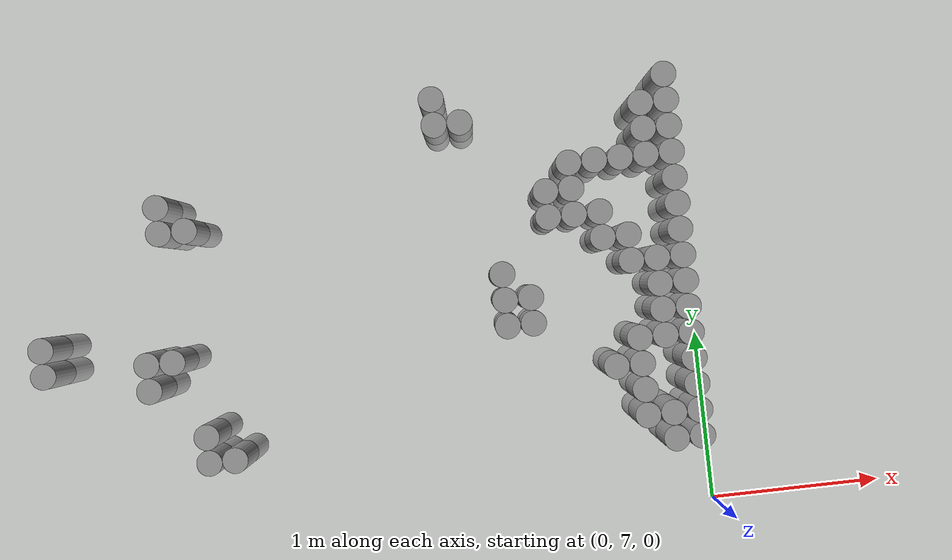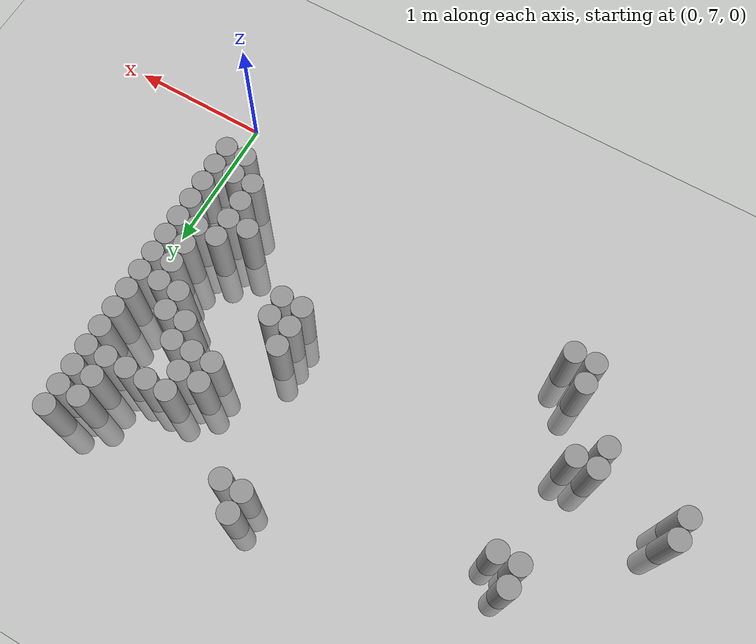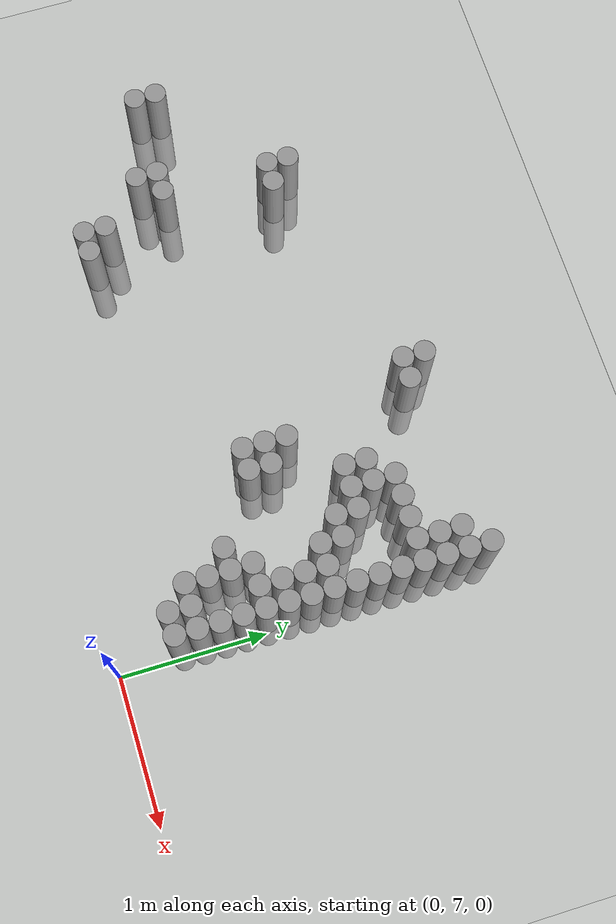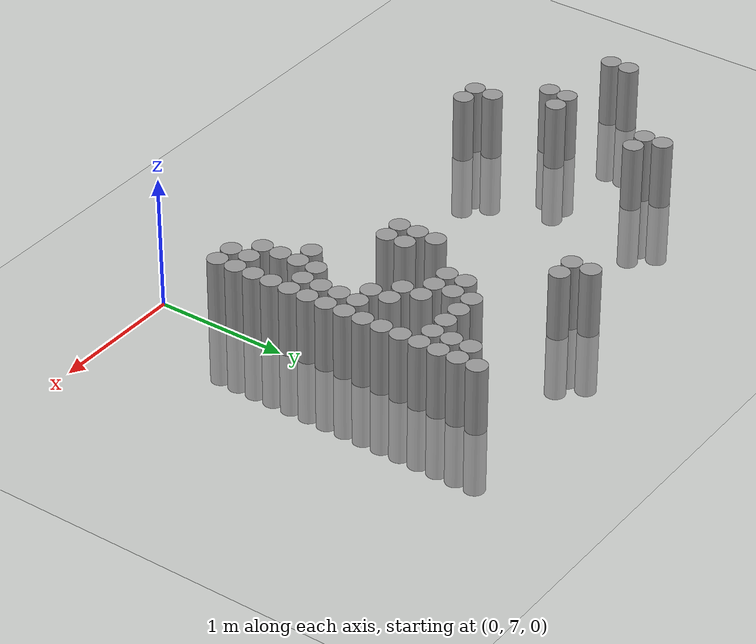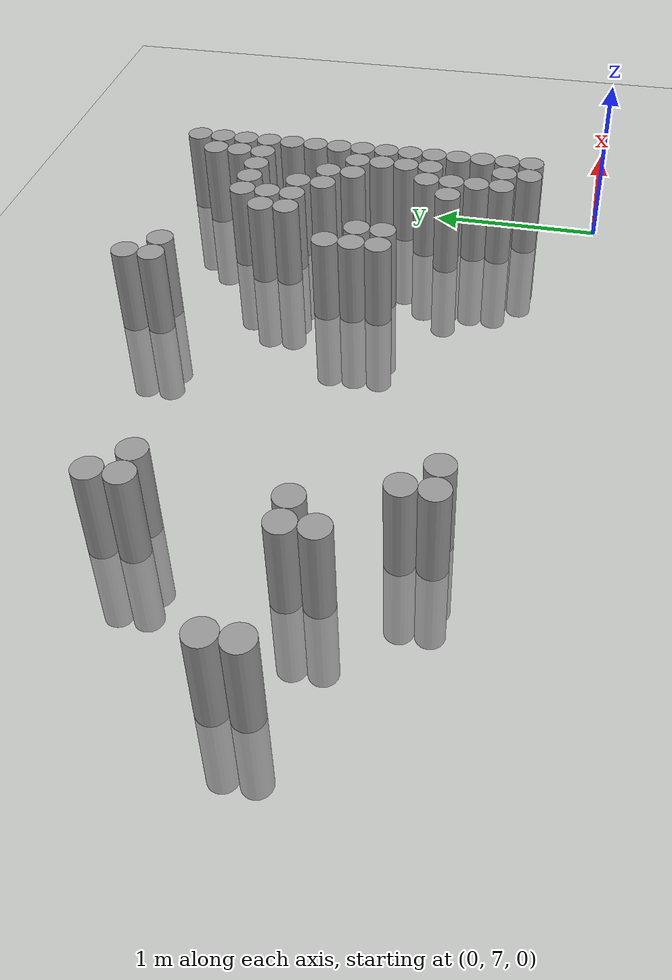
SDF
<sdf version="1.6">
 <world name="default">
  <model name="ground_plane">
   <static>1</static>
   <static>1</static>
   <link name="link">
    <collision name="collision">
     <geometry><plane><normal>0 0 1</normal><size>100 100</size></plane></geometry>
     <surface><friction><ode><mu>100</mu><mu2>50</mu2></ode></friction></surface>
    </collision>
    <visual name="visual">
     <cast_shadows>0</cast_shadows>
     <geometry><plane><normal>0 0 1</normal><size>100 100</size></plane></geometry>
     <material>
      <script><uri>file://media/materials/scripts/gazebo.material</uri><name>Gazebo/Grey</name></script>
     </material>
    </visual>
   </link>
  </model>
  <model name="unit_cylinder_165">
   <static>1</static>
   <pose>-3.825000 8.175000 0.000000 0.000000 0.000000 0.000000</pose>
   <link name="link">
    <inertial>
     <mass>1</mass>
     <inertia><ixx>0.145833</ixx><ixy>0</ixy><ixz>0</ixz><iyy>0.145833</iyy><iyz>0</iyz><izz>0.125</izz></inertia>
    </inertial>
    <collision name="collision">
     <geometry><cylinder><radius>0.075000</radius><length>1</length></cylinder></geometry>
    </collision>
    <visual name="visual">
     <geometry><cylinder><radius>0.075000</radius><length>1</length></cylinder></geometry>
     <material>
      <script><name>Gazebo/Grey</name><uri>file://media/materials/scripts/gazebo.material</uri></script>
     </material>
    </visual>
   </link>
  </model>
  <model name="unit_cylinder_166">
   <static>1</static>
   <pose>-3.825000 8.325000 0.000000 0.000000 0.000000 0.000000</pose>
   <link name="link">
    <inertial>
     <mass>1</mass>
     <inertia><ixx>0.145833</ixx><ixy>0</ixy><ixz>0</ixz><iyy>0.145833</iyy><iyz>0</iyz><izz>0.125</izz></inertia>
    </inertial>
    <collision name="collision">
     <geometry><cylinder><radius>0.075000</radius><length>1</length></cylinder></geometry>
    </collision>
    <visual name="visual">
     <geometry><cylinder><radius>0.075000</radius><length>1</length></cylinder></geometry>
     <material>
      <script><name>Gazebo/Grey</name><uri>file://media/materials/scripts/gazebo.material</uri></script>
     </material>
    </visual>
   </link>
  </model>
  <model name="unit_cylinder_171">
   <static>1</static>
   <pose>-3.225000 8.025000 0.000000 0.000000 0.000000 0.000000</pose>
   <link name="link">
    <inertial>
     <mass>1</mass>
     <inertia><ixx>0.145833</ixx><ixy>0</ixy><ixz>0</ixz><iyy>0.145833</iyy><iyz>0</iyz><izz>0.125</izz></inertia>
    </inertial>
    <collision name="collision">
     <geometry><cylinder><radius>0.075000</radius><length>1</length></cylinder></geometry>
    </collision>
    <visual name="visual">
     <geometry><cylinder><radius>0.075000</radius><length>1</length></cylinder></geometry>
     <material>
      <script><name>Gazebo/Grey</name><uri>file://media/materials/scripts/gazebo.material</uri></script>
     </material>
    </visual>
   </link>
  </model>
  <model name="unit_cylinder_172">
   <static>1</static>
   <pose>-3.225000 8.175000 0.000000 0.000000 0.000000 0.000000</pose>
   <link name="link">
    <inertial>
     <mass>1</mass>
     <inertia><ixx>0.145833</ixx><ixy>0</ixy><ixz>0</ixz><iyy>0.145833</iyy><iyz>0</iyz><izz>0.125</izz></inertia>
    </inertial>
    <collision name="collision">
     <geometry><cylinder><radius>0.075000</radius><length>1</length></cylinder></geometry>
    </collision>
    <visual name="visual">
     <geometry><cylinder><radius>0.075000</radius><length>1</length></cylinder></geometry>
     <material>
      <script><name>Gazebo/Grey</name><uri>file://media/materials/scripts/gazebo.material</uri></script>
     </material>
    </visual>
   </link>
  </model>
  <model name="unit_cylinder_175">
   <static>1</static>
   <pose>-3.075000 8.175000 0.000000 0.000000 0.000000 0.000000</pose>
   <link name="link">
    <inertial>
     <mass>1</mass>
     <inertia><ixx>0.145833</ixx><ixy>0</ixy><ixz>0</ixz><iyy>0.145833</iyy><iyz>0</iyz><izz>0.125</izz></inertia>
    </inertial>
    <collision name="collision">
     <geometry><cylinder><radius>0.075000</radius><length>1</length></cylinder></geometry>
    </collision>
    <visual name="visual">
     <geometry><cylinder><radius>0.075000</radius><length>1</length></cylinder></geometry>
     <material>
      <script><name>Gazebo/Grey</name><uri>file://media/materials/scripts/gazebo.material</uri></script>
     </material>
    </visual>
   </link>
  </model>
  <model name="unit_cylinder_176">
   <static>1</static>
   <pose>-3.075000 8.925000 0.000000 0.000000 0.000000 0.000000</pose>
   <link name="link">
    <inertial>
     <mass>1</mass>
     <inertia><ixx>0.145833</ixx><ixy>0</ixy><ixz>0</ixz><iyy>0.145833</iyy><iyz>0</iyz><izz>0.125</izz></inertia>
    </inertial>
    <collision name="collision">
     <geometry><cylinder><radius>0.075000</radius><length>1</length></cylinder></geometry>
    </collision>
    <visual name="visual">
     <geometry><cylinder><radius>0.075000</radius><length>1</length></cylinder></geometry>
     <material>
      <script><name>Gazebo/Grey</name><uri>file://media/materials/scripts/gazebo.material</uri></script>
     </material>
    </visual>
   </link>
  </model>
  <model name="unit_cylinder_177">
   <static>1</static>
   <pose>-3.075000 9.075000 0.000000 0.000000 0.000000 0.000000</pose>
   <link name="link">
    <inertial>
     <mass>1</mass>
     <inertia><ixx>0.145833</ixx><ixy>0</ixy><ixz>0</ixz><iyy>0.145833</iyy><iyz>0</iyz><izz>0.125</izz></inertia>
    </inertial>
    <collision name="collision">
     <geometry><cylinder><radius>0.075000</radius><length>1</length></cylinder></geometry>
    </collision>
    <visual name="visual">
     <geometry><cylinder><radius>0.075000</radius><length>1</length></cylinder></geometry>
     <material>
      <script><name>Gazebo/Grey</name><uri>file://media/materials/scripts/gazebo.material</uri></script>
     </material>
    </visual>
   </link>
  </model>
  <model name="unit_cylinder_178">
   <static>1</static>
   <pose>-2.925000 7.575000 0.000000 0.000000 0.000000 0.000000</pose>
   <link name="link">
    <inertial>
     <mass>1</mass>
     <inertia><ixx>0.145833</ixx><ixy>0</ixy><ixz>0</ixz><iyy>0.145833</iyy><iyz>0</iyz><izz>0.125</izz></inertia>
    </inertial>
    <collision name="collision">
     <geometry><cylinder><radius>0.075000</radius><length>1</length></cylinder></geometry>
    </collision>
    <visual name="visual">
     <geometry><cylinder><radius>0.075000</radius><length>1</length></cylinder></geometry>
     <material>
      <script><name>Gazebo/Grey</name><uri>file://media/materials/scripts/gazebo.material</uri></script>
     </material>
    </visual>
   </link>
  </model>
  <model name="unit_cylinder_179">
   <static>1</static>
   <pose>-2.925000 7.725000 0.000000 0.000000 0.000000 0.000000</pose>
   <link name="link">
    <inertial>
     <mass>1</mass>
     <inertia><ixx>0.145833</ixx><ixy>0</ixy><ixz>0</ixz><iyy>0.145833</iyy><iyz>0</iyz><izz>0.125</izz></inertia>
    </inertial>
    <collision name="collision">
     <geometry><cylinder><radius>0.075000</radius><length>1</length></cylinder></geometry>
    </collision>
    <visual name="visual">
     <geometry><cylinder><radius>0.075000</radius><length>1</length></cylinder></geometry>
     <material>
      <script><name>Gazebo/Grey</name><uri>file://media/materials/scripts/gazebo.material</uri></script>
     </material>
    </visual>
   </link>
  </model>
  <model name="unit_cylinder_180">
   <static>1</static>
   <pose>-2.925000 8.925000 0.000000 0.000000 0.000000 0.000000</pose>
   <link name="link">
    <inertial>
     <mass>1</mass>
     <inertia><ixx>0.145833</ixx><ixy>0</ixy><ixz>0</ixz><iyy>0.145833</iyy><iyz>0</iyz><izz>0.125</izz></inertia>
    </inertial>
    <collision name="collision">
     <geometry><cylinder><radius>0.075000</radius><length>1</length></cylinder></geometry>
    </collision>
    <visual name="visual">
     <geometry><cylinder><radius>0.075000</radius><length>1</length></cylinder></geometry>
     <material>
      <script><name>Gazebo/Grey</name><uri>file://media/materials/scripts/gazebo.material</uri></script>
     </material>
    </visual>
   </link>
  </model>
  <model name="unit_cylinder_183">
   <static>1</static>
   <pose>-2.775000 7.575000 0.000000 0.000000 0.000000 0.000000</pose>
   <link name="link">
    <inertial>
     <mass>1</mass>
     <inertia><ixx>0.145833</ixx><ixy>0</ixy><ixz>0</ixz><iyy>0.145833</iyy><iyz>0</iyz><izz>0.125</izz></inertia>
    </inertial>
    <collision name="collision">
     <geometry><cylinder><radius>0.075000</radius><length>1</length></cylinder></geometry>
    </collision>
    <visual name="visual">
     <geometry><cylinder><radius>0.075000</radius><length>1</length></cylinder></geometry>
     <material>
      <script><name>Gazebo/Grey</name><uri>file://media/materials/scripts/gazebo.material</uri></script>
     </material>
    </visual>
   </link>
  </model>
  <model name="unit_cylinder_216">
   <static>1</static>
   <pose>-1.425000 9.375000 0.000000 0.000000 0.000000 0.000000</pose>
   <link name="link">
    <inertial>
     <mass>1</mass>
     <inertia><ixx>0.145833</ixx><ixy>0</ixy><ixz>0</ixz><iyy>0.145833</iyy><iyz>0</iyz><izz>0.125</izz></inertia>
    </inertial>
    <collision name="collision">
     <geometry><cylinder><radius>0.075000</radius><length>1</length></cylinder></geometry>
    </collision>
    <visual name="visual">
     <geometry><cylinder><radius>0.075000</radius><length>1</length></cylinder></geometry>
     <material>
      <script><name>Gazebo/Grey</name><uri>file://media/materials/scripts/gazebo.material</uri></script>
     </material>
    </visual>
   </link>
  </model>
  <model name="unit_cylinder_217">
   <static>1</static>
   <pose>-1.425000 9.525000 0.000000 0.000000 0.000000 0.000000</pose>
   <link name="link">
    <inertial>
     <mass>1</mass>
     <inertia><ixx>0.145833</ixx><ixy>0</ixy><ixz>0</ixz><iyy>0.145833</iyy><iyz>0</iyz><izz>0.125</izz></inertia>
    </inertial>
    <collision name="collision">
     <geometry><cylinder><radius>0.075000</radius><length>1</length></cylinder></geometry>
    </collision>
    <visual name="visual">
     <geometry><cylinder><radius>0.075000</radius><length>1</length></cylinder></geometry>
     <material>
      <script><name>Gazebo/Grey</name><uri>file://media/materials/scripts/gazebo.material</uri></script>
     </material>
    </visual>
   </link>
  </model>
  <model name="unit_cylinder_218">
   <static>1</static>
   <pose>-1.275000 9.375000 0.000000 0.000000 0.000000 0.000000</pose>
   <link name="link">
    <inertial>
     <mass>1</mass>
     <inertia><ixx>0.145833</ixx><ixy>0</ixy><ixz>0</ixz><iyy>0.145833</iyy><iyz>0</iyz><izz>0.125</izz></inertia>
    </inertial>
    <collision name="collision">
     <geometry><cylinder><radius>0.075000</radius><length>1</length></cylinder></geometry>
    </collision>
    <visual name="visual">
     <geometry><cylinder><radius>0.075000</radius><length>1</length></cylinder></geometry>
     <material>
      <script><name>Gazebo/Grey</name><uri>file://media/materials/scripts/gazebo.material</uri></script>
     </material>
    </visual>
   </link>
  </model>
  <model name="unit_cylinder_219">
   <static>1</static>
   <pose>-1.125000 8.175000 0.000000 0.000000 0.000000 0.000000</pose>
   <link name="link">
    <inertial>
     <mass>1</mass>
     <inertia><ixx>0.145833</ixx><ixy>0</ixy><ixz>0</ixz><iyy>0.145833</iyy><iyz>0</iyz><izz>0.125</izz></inertia>
    </inertial>
    <collision name="collision">
     <geometry><cylinder><radius>0.075000</radius><length>1</length></cylinder></geometry>
    </collision>
    <visual name="visual">
     <geometry><cylinder><radius>0.075000</radius><length>1</length></cylinder></geometry>
     <material>
      <script><name>Gazebo/Grey</name><uri>file://media/materials/scripts/gazebo.material</uri></script>
     </material>
    </visual>
   </link>
  </model>
  <model name="unit_cylinder_220">
   <static>1</static>
   <pose>-1.125000 8.325000 0.000000 0.000000 0.000000 0.000000</pose>
   <link name="link">
    <inertial>
     <mass>1</mass>
     <inertia><ixx>0.145833</ixx><ixy>0</ixy><ixz>0</ixz><iyy>0.145833</iyy><iyz>0</iyz><izz>0.125</izz></inertia>
    </inertial>
    <collision name="collision">
     <geometry><cylinder><radius>0.075000</radius><length>1</length></cylinder></geometry>
    </collision>
    <visual name="visual">
     <geometry><cylinder><radius>0.075000</radius><length>1</length></cylinder></geometry>
     <material>
      <script><name>Gazebo/Grey</name><uri>file://media/materials/scripts/gazebo.material</uri></script>
     </material>
    </visual>
   </link>
  </model>
  <model name="unit_cylinder_221">
   <static>1</static>
   <pose>-1.125000 8.475000 0.000000 0.000000 0.000000 0.000000</pose>
   <link name="link">
    <inertial>
     <mass>1</mass>
     <inertia><ixx>0.145833</ixx><ixy>0</ixy><ixz>0</ixz><iyy>0.145833</iyy><iyz>0</iyz><izz>0.125</izz></inertia>
    </inertial>
    <collision name="collision">
     <geometry><cylinder><radius>0.075000</radius><length>1</length></cylinder></geometry>
    </collision>
    <visual name="visual">
     <geometry><cylinder><radius>0.075000</radius><length>1</length></cylinder></geometry>
     <material>
      <script><name>Gazebo/Grey</name><uri>file://media/materials/scripts/gazebo.material</uri></script>
     </material>
    </visual>
   </link>
  </model>
  <model name="unit_cylinder_222">
   <static>1</static>
   <pose>-0.975000 8.175000 0.000000 0.000000 0.000000 0.000000</pose>
   <link name="link">
    <inertial>
     <mass>1</mass>
     <inertia><ixx>0.145833</ixx><ixy>0</ixy><ixz>0</ixz><iyy>0.145833</iyy><iyz>0</iyz><izz>0.125</izz></inertia>
    </inertial>
    <collision name="collision">
     <geometry><cylinder><radius>0.075000</radius><length>1</length></cylinder></geometry>
    </collision>
    <visual name="visual">
     <geometry><cylinder><radius>0.075000</radius><length>1</length></cylinder></geometry>
     <material>
      <script><name>Gazebo/Grey</name><uri>file://media/materials/scripts/gazebo.material</uri></script>
     </material>
    </visual>
   </link>
  </model>
  <model name="unit_cylinder_223">
   <static>1</static>
   <pose>-0.975000 8.325000 0.000000 0.000000 0.000000 0.000000</pose>
   <link name="link">
    <inertial>
     <mass>1</mass>
     <inertia><ixx>0.145833</ixx><ixy>0</ixy><ixz>0</ixz><iyy>0.145833</iyy><iyz>0</iyz><izz>0.125</izz></inertia>
    </inertial>
    <collision name="collision">
     <geometry><cylinder><radius>0.075000</radius><length>1</length></cylinder></geometry>
    </collision>
    <visual name="visual">
     <geometry><cylinder><radius>0.075000</radius><length>1</length></cylinder></geometry>
     <material>
      <script><name>Gazebo/Grey</name><uri>file://media/materials/scripts/gazebo.material</uri></script>
     </material>
    </visual>
   </link>
  </model>
  <model name="unit_cylinder_224">
   <static>1</static>
   <pose>-0.825000 8.775000 0.000000 0.000000 0.000000 0.000000</pose>
   <link name="link">
    <inertial>
     <mass>1</mass>
     <inertia><ixx>0.145833</ixx><ixy>0</ixy><ixz>0</ixz><iyy>0.145833</iyy><iyz>0</iyz><izz>0.125</izz></inertia>
    </inertial>
    <collision name="collision">
     <geometry><cylinder><radius>0.075000</radius><length>1</length></cylinder></geometry>
    </collision>
    <visual name="visual">
     <geometry><cylinder><radius>0.075000</radius><length>1</length></cylinder></geometry>
     <material>
      <script><name>Gazebo/Grey</name><uri>file://media/materials/scripts/gazebo.material</uri></script>
     </material>
    </visual>
   </link>
  </model>
  <model name="unit_cylinder_225">
   <static>1</static>
   <pose>-0.825000 8.925000 0.000000 0.000000 0.000000 0.000000</pose>
   <link name="link">
    <inertial>
     <mass>1</mass>
     <inertia><ixx>0.145833</ixx><ixy>0</ixy><ixz>0</ixz><iyy>0.145833</iyy><iyz>0</iyz><izz>0.125</izz></inertia>
    </inertial>
    <collision name="collision">
     <geometry><cylinder><radius>0.075000</radius><length>1</length></cylinder></geometry>
    </collision>
    <visual name="visual">
     <geometry><cylinder><radius>0.075000</radius><length>1</length></cylinder></geometry>
     <material>
      <script><name>Gazebo/Grey</name><uri>file://media/materials/scripts/gazebo.material</uri></script>
     </material>
    </visual>
   </link>
  </model>
  <model name="unit_cylinder_229">
   <static>1</static>
   <pose>-0.675000 8.775000 0.000000 0.000000 0.000000 0.000000</pose>
   <link name="link">
    <inertial>
     <mass>1</mass>
     <inertia><ixx>0.145833</ixx><ixy>0</ixy><ixz>0</ixz><iyy>0.145833</iyy><iyz>0</iyz><izz>0.125</izz></inertia>
    </inertial>
    <collision name="collision">
     <geometry><cylinder><radius>0.075000</radius><length>1</length></cylinder></geometry>
    </collision>
    <visual name="visual">
     <geometry><cylinder><radius>0.075000</radius><length>1</length></cylinder></geometry>
     <material>
      <script><name>Gazebo/Grey</name><uri>file://media/materials/scripts/gazebo.material</uri></script>
     </material>
    </visual>
   </link>
  </model>
  <model name="unit_cylinder_230">
   <static>1</static>
   <pose>-0.675000 8.925000 0.000000 0.000000 0.000000 0.000000</pose>
   <link name="link">
    <inertial>
     <mass>1</mass>
     <inertia><ixx>0.145833</ixx><ixy>0</ixy><ixz>0</ixz><iyy>0.145833</iyy><iyz>0</iyz><izz>0.125</izz></inertia>
    </inertial>
    <collision name="collision">
     <geometry><cylinder><radius>0.075000</radius><length>1</length></cylinder></geometry>
    </collision>
    <visual name="visual">
     <geometry><cylinder><radius>0.075000</radius><length>1</length></cylinder></geometry>
     <material>
      <script><name>Gazebo/Grey</name><uri>file://media/materials/scripts/gazebo.material</uri></script>
     </material>
    </visual>
   </link>
  </model>
  <model name="unit_cylinder_231">
   <static>1</static>
   <pose>-0.675000 9.075000 0.000000 0.000000 0.000000 0.000000</pose>
   <link name="link">
    <inertial>
     <mass>1</mass>
     <inertia><ixx>0.145833</ixx><ixy>0</ixy><ixz>0</ixz><iyy>0.145833</iyy><iyz>0</iyz><izz>0.125</izz></inertia>
    </inertial>
    <collision name="collision">
     <geometry><cylinder><radius>0.075000</radius><length>1</length></cylinder></geometry>
    </collision>
    <visual name="visual">
     <geometry><cylinder><radius>0.075000</radius><length>1</length></cylinder></geometry>
     <material>
      <script><name>Gazebo/Grey</name><uri>file://media/materials/scripts/gazebo.material</uri></script>
     </material>
    </visual>
   </link>
  </model>
  <model name="unit_cylinder_235">
   <static>1</static>
   <pose>-0.525000 7.875000 0.000000 0.000000 0.000000 0.000000</pose>
   <link name="link">
    <inertial>
     <mass>1</mass>
     <inertia><ixx>0.145833</ixx><ixy>0</ixy><ixz>0</ixz><iyy>0.145833</iyy><iyz>0</iyz><izz>0.125</izz></inertia>
    </inertial>
    <collision name="collision">
     <geometry><cylinder><radius>0.075000</radius><length>1</length></cylinder></geometry>
    </collision>
    <visual name="visual">
     <geometry><cylinder><radius>0.075000</radius><length>1</length></cylinder></geometry>
     <material>
      <script><name>Gazebo/Grey</name><uri>file://media/materials/scripts/gazebo.material</uri></script>
     </material>
    </visual>
   </link>
  </model>
  <model name="unit_cylinder_236">
   <static>1</static>
   <pose>-0.525000 8.625000 0.000000 0.000000 0.000000 0.000000</pose>
   <link name="link">
    <inertial>
     <mass>1</mass>
     <inertia><ixx>0.145833</ixx><ixy>0</ixy><ixz>0</ixz><iyy>0.145833</iyy><iyz>0</iyz><izz>0.125</izz></inertia>
    </inertial>
    <collision name="collision">
     <geometry><cylinder><radius>0.075000</radius><length>1</length></cylinder></geometry>
    </collision>
    <visual name="visual">
     <geometry><cylinder><radius>0.075000</radius><length>1</length></cylinder></geometry>
     <material>
      <script><name>Gazebo/Grey</name><uri>file://media/materials/scripts/gazebo.material</uri></script>
     </material>
    </visual>
   </link>
  </model>
  <model name="unit_cylinder_237">
   <static>1</static>
   <pose>-0.525000 8.775000 0.000000 0.000000 0.000000 0.000000</pose>
   <link name="link">
    <inertial>
     <mass>1</mass>
     <inertia><ixx>0.145833</ixx><ixy>0</ixy><ixz>0</ixz><iyy>0.145833</iyy><iyz>0</iyz><izz>0.125</izz></inertia>
    </inertial>
    <collision name="collision">
     <geometry><cylinder><radius>0.075000</radius><length>1</length></cylinder></geometry>
    </collision>
    <visual name="visual">
     <geometry><cylinder><radius>0.075000</radius><length>1</length></cylinder></geometry>
     <material>
      <script><name>Gazebo/Grey</name><uri>file://media/materials/scripts/gazebo.material</uri></script>
     </material>
    </visual>
   </link>
  </model>
  <model name="unit_cylinder_238">
   <static>1</static>
   <pose>-0.525000 9.075000 0.000000 0.000000 0.000000 0.000000</pose>
   <link name="link">
    <inertial>
     <mass>1</mass>
     <inertia><ixx>0.145833</ixx><ixy>0</ixy><ixz>0</ixz><iyy>0.145833</iyy><iyz>0</iyz><izz>0.125</izz></inertia>
    </inertial>
    <collision name="collision">
     <geometry><cylinder><radius>0.075000</radius><length>1</length></cylinder></geometry>
    </collision>
    <visual name="visual">
     <geometry><cylinder><radius>0.075000</radius><length>1</length></cylinder></geometry>
     <material>
      <script><name>Gazebo/Grey</name><uri>file://media/materials/scripts/gazebo.material</uri></script>
     </material>
    </visual>
   </link>
  </model>
  <model name="unit_cylinder_242">
   <static>1</static>
   <pose>-0.375000 7.575000 0.000000 0.000000 0.000000 0.000000</pose>
   <link name="link">
    <inertial>
     <mass>1</mass>
     <inertia><ixx>0.145833</ixx><ixy>0</ixy><ixz>0</ixz><iyy>0.145833</iyy><iyz>0</iyz><izz>0.125</izz></inertia>
    </inertial>
    <collision name="collision">
     <geometry><cylinder><radius>0.075000</radius><length>1</length></cylinder></geometry>
    </collision>
    <visual name="visual">
     <geometry><cylinder><radius>0.075000</radius><length>1</length></cylinder></geometry>
     <material>
      <script><name>Gazebo/Grey</name><uri>file://media/materials/scripts/gazebo.material</uri></script>
     </material>
    </visual>
   </link>
  </model>
  <model name="unit_cylinder_243">
   <static>1</static>
   <pose>-0.375000 7.725000 0.000000 0.000000 0.000000 0.000000</pose>
   <link name="link">
    <inertial>
     <mass>1</mass>
     <inertia><ixx>0.145833</ixx><ixy>0</ixy><ixz>0</ixz><iyy>0.145833</iyy><iyz>0</iyz><izz>0.125</izz></inertia>
    </inertial>
    <collision name="collision">
     <geometry><cylinder><radius>0.075000</radius><length>1</length></cylinder></geometry>
    </collision>
    <visual name="visual">
     <geometry><cylinder><radius>0.075000</radius><length>1</length></cylinder></geometry>
     <material>
      <script><name>Gazebo/Grey</name><uri>file://media/materials/scripts/gazebo.material</uri></script>
     </material>
    </visual>
   </link>
  </model>
  <model name="unit_cylinder_244">
   <static>1</static>
   <pose>-0.375000 7.875000 0.000000 0.000000 0.000000 0.000000</pose>
   <link name="link">
    <inertial>
     <mass>1</mass>
     <inertia><ixx>0.145833</ixx><ixy>0</ixy><ixz>0</ixz><iyy>0.145833</iyy><iyz>0</iyz><izz>0.125</izz></inertia>
    </inertial>
    <collision name="collision">
     <geometry><cylinder><radius>0.075000</radius><length>1</length></cylinder></geometry>
    </collision>
    <visual name="visual">
     <geometry><cylinder><radius>0.075000</radius><length>1</length></cylinder></geometry>
     <material>
      <script><name>Gazebo/Grey</name><uri>file://media/materials/scripts/gazebo.material</uri></script>
     </material>
    </visual>
   </link>
  </model>
  <model name="unit_cylinder_245">
   <static>1</static>
   <pose>-0.375000 8.025000 0.000000 0.000000 0.000000 0.000000</pose>
   <link name="link">
    <inertial>
     <mass>1</mass>
     <inertia><ixx>0.145833</ixx><ixy>0</ixy><ixz>0</ixz><iyy>0.145833</iyy><iyz>0</iyz><izz>0.125</izz></inertia>
    </inertial>
    <collision name="collision">
     <geometry><cylinder><radius>0.075000</radius><length>1</length></cylinder></geometry>
    </collision>
    <visual name="visual">
     <geometry><cylinder><radius>0.075000</radius><length>1</length></cylinder></geometry>
     <material>
      <script><name>Gazebo/Grey</name><uri>file://media/materials/scripts/gazebo.material</uri></script>
     </material>
    </visual>
   </link>
  </model>
  <model name="unit_cylinder_246">
   <static>1</static>
   <pose>-0.375000 8.475000 0.000000 0.000000 0.000000 0.000000</pose>
   <link name="link">
    <inertial>
     <mass>1</mass>
     <inertia><ixx>0.145833</ixx><ixy>0</ixy><ixz>0</ixz><iyy>0.145833</iyy><iyz>0</iyz><izz>0.125</izz></inertia>
    </inertial>
    <collision name="collision">
     <geometry><cylinder><radius>0.075000</radius><length>1</length></cylinder></geometry>
    </collision>
    <visual name="visual">
     <geometry><cylinder><radius>0.075000</radius><length>1</length></cylinder></geometry>
     <material>
      <script><name>Gazebo/Grey</name><uri>file://media/materials/scripts/gazebo.material</uri></script>
     </material>
    </visual>
   </link>
  </model>
  <model name="unit_cylinder_247">
   <static>1</static>
   <pose>-0.375000 8.625000 0.000000 0.000000 0.000000 0.000000</pose>
   <link name="link">
    <inertial>
     <mass>1</mass>
     <inertia><ixx>0.145833</ixx><ixy>0</ixy><ixz>0</ixz><iyy>0.145833</iyy><iyz>0</iyz><izz>0.125</izz></inertia>
    </inertial>
    <collision name="collision">
     <geometry><cylinder><radius>0.075000</radius><length>1</length></cylinder></geometry>
    </collision>
    <visual name="visual">
     <geometry><cylinder><radius>0.075000</radius><length>1</length></cylinder></geometry>
     <material>
      <script><name>Gazebo/Grey</name><uri>file://media/materials/scripts/gazebo.material</uri></script>
     </material>
    </visual>
   </link>
  </model>
  <model name="unit_cylinder_248">
   <static>1</static>
   <pose>-0.375000 9.075000 0.000000 0.000000 0.000000 0.000000</pose>
   <link name="link">
    <inertial>
     <mass>1</mass>
     <inertia><ixx>0.145833</ixx><ixy>0</ixy><ixz>0</ixz><iyy>0.145833</iyy><iyz>0</iyz><izz>0.125</izz></inertia>
    </inertial>
    <collision name="collision">
     <geometry><cylinder><radius>0.075000</radius><length>1</length></cylinder></geometry>
    </collision>
    <visual name="visual">
     <geometry><cylinder><radius>0.075000</radius><length>1</length></cylinder></geometry>
     <material>
      <script><name>Gazebo/Grey</name><uri>file://media/materials/scripts/gazebo.material</uri></script>
     </material>
    </visual>
   </link>
  </model>
  <model name="unit_cylinder_253">
   <static>1</static>
   <pose>-0.225000 7.425000 0.000000 0.000000 0.000000 0.000000</pose>
   <link name="link">
    <inertial>
     <mass>1</mass>
     <inertia><ixx>0.145833</ixx><ixy>0</ixy><ixz>0</ixz><iyy>0.145833</iyy><iyz>0</iyz><izz>0.125</izz></inertia>
    </inertial>
    <collision name="collision">
     <geometry><cylinder><radius>0.075000</radius><length>1</length></cylinder></geometry>
    </collision>
    <visual name="visual">
     <geometry><cylinder><radius>0.075000</radius><length>1</length></cylinder></geometry>
     <material>
      <script><name>Gazebo/Grey</name><uri>file://media/materials/scripts/gazebo.material</uri></script>
     </material>
    </visual>
   </link>
  </model>
  <model name="unit_cylinder_254">
   <static>1</static>
   <pose>-0.225000 7.575000 0.000000 0.000000 0.000000 0.000000</pose>
   <link name="link">
    <inertial>
     <mass>1</mass>
     <inertia><ixx>0.145833</ixx><ixy>0</ixy><ixz>0</ixz><iyy>0.145833</iyy><iyz>0</iyz><izz>0.125</izz></inertia>
    </inertial>
    <collision name="collision">
     <geometry><cylinder><radius>0.075000</radius><length>1</length></cylinder></geometry>
    </collision>
    <visual name="visual">
     <geometry><cylinder><radius>0.075000</radius><length>1</length></cylinder></geometry>
     <material>
      <script><name>Gazebo/Grey</name><uri>file://media/materials/scripts/gazebo.material</uri></script>
     </material>
    </visual>
   </link>
  </model>
  <model name="unit_cylinder_255">
   <static>1</static>
   <pose>-0.225000 8.025000 0.000000 0.000000 0.000000 0.000000</pose>
   <link name="link">
    <inertial>
     <mass>1</mass>
     <inertia><ixx>0.145833</ixx><ixy>0</ixy><ixz>0</ixz><iyy>0.145833</iyy><iyz>0</iyz><izz>0.125</izz></inertia>
    </inertial>
    <collision name="collision">
     <geometry><cylinder><radius>0.075000</radius><length>1</length></cylinder></geometry>
    </collision>
    <visual name="visual">
     <geometry><cylinder><radius>0.075000</radius><length>1</length></cylinder></geometry>
     <material>
      <script><name>Gazebo/Grey</name><uri>file://media/materials/scripts/gazebo.material</uri></script>
     </material>
    </visual>
   </link>
  </model>
  <model name="unit_cylinder_256">
   <static>1</static>
   <pose>-0.225000 8.175000 0.000000 0.000000 0.000000 0.000000</pose>
   <link name="link">
    <inertial>
     <mass>1</mass>
     <inertia><ixx>0.145833</ixx><ixy>0</ixy><ixz>0</ixz><iyy>0.145833</iyy><iyz>0</iyz><izz>0.125</izz></inertia>
    </inertial>
    <collision name="collision">
     <geometry><cylinder><radius>0.075000</radius><length>1</length></cylinder></geometry>
    </collision>
    <visual name="visual">
     <geometry><cylinder><radius>0.075000</radius><length>1</length></cylinder></geometry>
     <material>
      <script><name>Gazebo/Grey</name><uri>file://media/materials/scripts/gazebo.material</uri></script>
     </material>
    </visual>
   </link>
  </model>
  <model name="unit_cylinder_257">
   <static>1</static>
   <pose>-0.225000 8.325000 0.000000 0.000000 0.000000 0.000000</pose>
   <link name="link">
    <inertial>
     <mass>1</mass>
     <inertia><ixx>0.145833</ixx><ixy>0</ixy><ixz>0</ixz><iyy>0.145833</iyy><iyz>0</iyz><izz>0.125</izz></inertia>
    </inertial>
    <collision name="collision">
     <geometry><cylinder><radius>0.075000</radius><length>1</length></cylinder></geometry>
    </collision>
    <visual name="visual">
     <geometry><cylinder><radius>0.075000</radius><length>1</length></cylinder></geometry>
     <material>
      <script><name>Gazebo/Grey</name><uri>file://media/materials/scripts/gazebo.material</uri></script>
     </material>
    </visual>
   </link>
  </model>
  <model name="unit_cylinder_258">
   <static>1</static>
   <pose>-0.225000 8.475000 0.000000 0.000000 0.000000 0.000000</pose>
   <link name="link">
    <inertial>
     <mass>1</mass>
     <inertia><ixx>0.145833</ixx><ixy>0</ixy><ixz>0</ixz><iyy>0.145833</iyy><iyz>0</iyz><izz>0.125</izz></inertia>
    </inertial>
    <collision name="collision">
     <geometry><cylinder><radius>0.075000</radius><length>1</length></cylinder></geometry>
    </collision>
    <visual name="visual">
     <geometry><cylinder><radius>0.075000</radius><length>1</length></cylinder></geometry>
     <material>
      <script><name>Gazebo/Grey</name><uri>file://media/materials/scripts/gazebo.material</uri></script>
     </material>
    </visual>
   </link>
  </model>
  <model name="unit_cylinder_259">
   <static>1</static>
   <pose>-0.225000 9.075000 0.000000 0.000000 0.000000 0.000000</pose>
   <link name="link">
    <inertial>
     <mass>1</mass>
     <inertia><ixx>0.145833</ixx><ixy>0</ixy><ixz>0</ixz><iyy>0.145833</iyy><iyz>0</iyz><izz>0.125</izz></inertia>
    </inertial>
    <collision name="collision">
     <geometry><cylinder><radius>0.075000</radius><length>1</length></cylinder></geometry>
    </collision>
    <visual name="visual">
     <geometry><cylinder><radius>0.075000</radius><length>1</length></cylinder></geometry>
     <material>
      <script><name>Gazebo/Grey</name><uri>file://media/materials/scripts/gazebo.material</uri></script>
     </material>
    </visual>
   </link>
  </model>
  <model name="unit_cylinder_260">
   <static>1</static>
   <pose>-0.225000 9.225000 0.000000 0.000000 0.000000 0.000000</pose>
   <link name="link">
    <inertial>
     <mass>1</mass>
     <inertia><ixx>0.145833</ixx><ixy>0</ixy><ixz>0</ixz><iyy>0.145833</iyy><iyz>0</iyz><izz>0.125</izz></inertia>
    </inertial>
    <collision name="collision">
     <geometry><cylinder><radius>0.075000</radius><length>1</length></cylinder></geometry>
    </collision>
    <visual name="visual">
     <geometry><cylinder><radius>0.075000</radius><length>1</length></cylinder></geometry>
     <material>
      <script><name>Gazebo/Grey</name><uri>file://media/materials/scripts/gazebo.material</uri></script>
     </material>
    </visual>
   </link>
  </model>
  <model name="unit_cylinder_261">
   <static>1</static>
   <pose>-0.225000 9.375000 0.000000 0.000000 0.000000 0.000000</pose>
   <link name="link">
    <inertial>
     <mass>1</mass>
     <inertia><ixx>0.145833</ixx><ixy>0</ixy><ixz>0</ixz><iyy>0.145833</iyy><iyz>0</iyz><izz>0.125</izz></inertia>
    </inertial>
    <collision name="collision">
     <geometry><cylinder><radius>0.075000</radius><length>1</length></cylinder></geometry>
    </collision>
    <visual name="visual">
     <geometry><cylinder><radius>0.075000</radius><length>1</length></cylinder></geometry>
     <material>
      <script><name>Gazebo/Grey</name><uri>file://media/materials/scripts/gazebo.material</uri></script>
     </material>
    </visual>
   </link>
  </model>
  <model name="unit_cylinder_277">
   <static>1</static>
   <pose>-0.075000 7.425000 0.000000 0.000000 0.000000 0.000000</pose>
   <link name="link">
    <inertial>
     <mass>1</mass>
     <inertia><ixx>0.145833</ixx><ixy>0</ixy><ixz>0</ixz><iyy>0.145833</iyy><iyz>0</iyz><izz>0.125</izz></inertia>
    </inertial>
    <collision name="collision">
     <geometry><cylinder><radius>0.075000</radius><length>1</length></cylinder></geometry>
    </collision>
    <visual name="visual">
     <geometry><cylinder><radius>0.075000</radius><length>1</length></cylinder></geometry>
     <material>
      <script><name>Gazebo/Grey</name><uri>file://media/materials/scripts/gazebo.material</uri></script>
     </material>
    </visual>
   </link>
  </model>
  <model name="unit_cylinder_278">
   <static>1</static>
   <pose>-0.075000 7.575000 0.000000 0.000000 0.000000 0.000000</pose>
   <link name="link">
    <inertial>
     <mass>1</mass>
     <inertia><ixx>0.145833</ixx><ixy>0</ixy><ixz>0</ixz><iyy>0.145833</iyy><iyz>0</iyz><izz>0.125</izz></inertia>
    </inertial>
    <collision name="collision">
     <geometry><cylinder><radius>0.075000</radius><length>1</length></cylinder></geometry>
    </collision>
    <visual name="visual">
     <geometry><cylinder><radius>0.075000</radius><length>1</length></cylinder></geometry>
     <material>
      <script><name>Gazebo/Grey</name><uri>file://media/materials/scripts/gazebo.material</uri></script>
     </material>
    </visual>
   </link>
  </model>
  <model name="unit_cylinder_279">
   <static>1</static>
   <pose>-0.075000 7.725000 0.000000 0.000000 0.000000 0.000000</pose>
   <link name="link">
    <inertial>
     <mass>1</mass>
     <inertia><ixx>0.145833</ixx><ixy>0</ixy><ixz>0</ixz><iyy>0.145833</iyy><iyz>0</iyz><izz>0.125</izz></inertia>
    </inertial>
    <collision name="collision">
     <geometry><cylinder><radius>0.075000</radius><length>1</length></cylinder></geometry>
    </collision>
    <visual name="visual">
     <geometry><cylinder><radius>0.075000</radius><length>1</length></cylinder></geometry>
     <material>
      <script><name>Gazebo/Grey</name><uri>file://media/materials/scripts/gazebo.material</uri></script>
     </material>
    </visual>
   </link>
  </model>
  <model name="unit_cylinder_280">
   <static>1</static>
   <pose>-0.075000 7.875000 0.000000 0.000000 0.000000 0.000000</pose>
   <link name="link">
    <inertial>
     <mass>1</mass>
     <inertia><ixx>0.145833</ixx><ixy>0</ixy><ixz>0</ixz><iyy>0.145833</iyy><iyz>0</iyz><izz>0.125</izz></inertia>
    </inertial>
    <collision name="collision">
     <geometry><cylinder><radius>0.075000</radius><length>1</length></cylinder></geometry>
    </collision>
    <visual name="visual">
     <geometry><cylinder><radius>0.075000</radius><length>1</length></cylinder></geometry>
     <material>
      <script><name>Gazebo/Grey</name><uri>file://media/materials/scripts/gazebo.material</uri></script>
     </material>
    </visual>
   </link>
  </model>
  <model name="unit_cylinder_281">
   <static>1</static>
   <pose>-0.075000 8.025000 0.000000 0.000000 0.000000 0.000000</pose>
   <link name="link">
    <inertial>
     <mass>1</mass>
     <inertia><ixx>0.145833</ixx><ixy>0</ixy><ixz>0</ixz><iyy>0.145833</iyy><iyz>0</iyz><izz>0.125</izz></inertia>
    </inertial>
    <collision name="collision">
     <geometry><cylinder><radius>0.075000</radius><length>1</length></cylinder></geometry>
    </collision>
    <visual name="visual">
     <geometry><cylinder><radius>0.075000</radius><length>1</length></cylinder></geometry>
     <material>
      <script><name>Gazebo/Grey</name><uri>file://media/materials/scripts/gazebo.material</uri></script>
     </material>
    </visual>
   </link>
  </model>
  <model name="unit_cylinder_282">
   <static>1</static>
   <pose>-0.075000 8.175000 0.000000 0.000000 0.000000 0.000000</pose>
   <link name="link">
    <inertial>
     <mass>1</mass>
     <inertia><ixx>0.145833</ixx><ixy>0</ixy><ixz>0</ixz><iyy>0.145833</iyy><iyz>0</iyz><izz>0.125</izz></inertia>
    </inertial>
    <collision name="collision">
     <geometry><cylinder><radius>0.075000</radius><length>1</length></cylinder></geometry>
    </collision>
    <visual name="visual">
     <geometry><cylinder><radius>0.075000</radius><length>1</length></cylinder></geometry>
     <material>
      <script><name>Gazebo/Grey</name><uri>file://media/materials/scripts/gazebo.material</uri></script>
     </material>
    </visual>
   </link>
  </model>
  <model name="unit_cylinder_283">
   <static>1</static>
   <pose>-0.075000 8.325000 0.000000 0.000000 0.000000 0.000000</pose>
   <link name="link">
    <inertial>
     <mass>1</mass>
     <inertia><ixx>0.145833</ixx><ixy>0</ixy><ixz>0</ixz><iyy>0.145833</iyy><iyz>0</iyz><izz>0.125</izz></inertia>
    </inertial>
    <collision name="collision">
     <geometry><cylinder><radius>0.075000</radius><length>1</length></cylinder></geometry>
    </collision>
    <visual name="visual">
     <geometry><cylinder><radius>0.075000</radius><length>1</length></cylinder></geometry>
     <material>
      <script><name>Gazebo/Grey</name><uri>file://media/materials/scripts/gazebo.material</uri></script>
     </material>
    </visual>
   </link>
  </model>
  <model name="unit_cylinder_284">
   <static>1</static>
   <pose>-0.075000 8.475000 0.000000 0.000000 0.000000 0.000000</pose>
   <link name="link">
    <inertial>
     <mass>1</mass>
     <inertia><ixx>0.145833</ixx><ixy>0</ixy><ixz>0</ixz><iyy>0.145833</iyy><iyz>0</iyz><izz>0.125</izz></inertia>
    </inertial>
    <collision name="collision">
     <geometry><cylinder><radius>0.075000</radius><length>1</length></cylinder></geometry>
    </collision>
    <visual name="visual">
     <geometry><cylinder><radius>0.075000</radius><length>1</length></cylinder></geometry>
     <material>
      <script><name>Gazebo/Grey</name><uri>file://media/materials/scripts/gazebo.material</uri></script>
     </material>
    </visual>
   </link>
  </model>
  <model name="unit_cylinder_285">
   <static>1</static>
   <pose>-0.075000 8.625000 0.000000 0.000000 0.000000 0.000000</pose>
   <link name="link">
    <inertial>
     <mass>1</mass>
     <inertia><ixx>0.145833</ixx><ixy>0</ixy><ixz>0</ixz><iyy>0.145833</iyy><iyz>0</iyz><izz>0.125</izz></inertia>
    </inertial>
    <collision name="collision">
     <geometry><cylinder><radius>0.075000</radius><length>1</length></cylinder></geometry>
    </collision>
    <visual name="visual">
     <geometry><cylinder><radius>0.075000</radius><length>1</length></cylinder></geometry>
     <material>
      <script><name>Gazebo/Grey</name><uri>file://media/materials/scripts/gazebo.material</uri></script>
     </material>
    </visual>
   </link>
  </model>
  <model name="unit_cylinder_286">
   <static>1</static>
   <pose>-0.075000 8.775000 0.000000 0.000000 0.000000 0.000000</pose>
   <link name="link">
    <inertial>
     <mass>1</mass>
     <inertia><ixx>0.145833</ixx><ixy>0</ixy><ixz>0</ixz><iyy>0.145833</iyy><iyz>0</iyz><izz>0.125</izz></inertia>
    </inertial>
    <collision name="collision">
     <geometry><cylinder><radius>0.075000</radius><length>1</length></cylinder></geometry>
    </collision>
    <visual name="visual">
     <geometry><cylinder><radius>0.075000</radius><length>1</length></cylinder></geometry>
     <material>
      <script><name>Gazebo/Grey</name><uri>file://media/materials/scripts/gazebo.material</uri></script>
     </material>
    </visual>
   </link>
  </model>
  <model name="unit_cylinder_287">
   <static>1</static>
   <pose>-0.075000 8.925000 0.000000 0.000000 0.000000 0.000000</pose>
   <link name="link">
    <inertial>
     <mass>1</mass>
     <inertia><ixx>0.145833</ixx><ixy>0</ixy><ixz>0</ixz><iyy>0.145833</iyy><iyz>0</iyz><izz>0.125</izz></inertia>
    </inertial>
    <collision name="collision">
     <geometry><cylinder><radius>0.075000</radius><length>1</length></cylinder></geometry>
    </collision>
    <visual name="visual">
     <geometry><cylinder><radius>0.075000</radius><length>1</length></cylinder></geometry>
     <material>
      <script><name>Gazebo/Grey</name><uri>file://media/materials/scripts/gazebo.material</uri></script>
     </material>
    </visual>
   </link>
  </model>
  <model name="unit_cylinder_288">
   <static>1</static>
   <pose>-0.075000 9.075000 0.000000 0.000000 0.000000 0.000000</pose>
   <link name="link">
    <inertial>
     <mass>1</mass>
     <inertia><ixx>0.145833</ixx><ixy>0</ixy><ixz>0</ixz><iyy>0.145833</iyy><iyz>0</iyz><izz>0.125</izz></inertia>
    </inertial>
    <collision name="collision">
     <geometry><cylinder><radius>0.075000</radius><length>1</length></cylinder></geometry>
    </collision>
    <visual name="visual">
     <geometry><cylinder><radius>0.075000</radius><length>1</length></cylinder></geometry>
     <material>
      <script><name>Gazebo/Grey</name><uri>file://media/materials/scripts/gazebo.material</uri></script>
     </material>
    </visual>
   </link>
  </model>
  <model name="unit_cylinder_289">
   <static>1</static>
   <pose>-0.075000 9.225000 0.000000 0.000000 0.000000 0.000000</pose>
   <link name="link">
    <inertial>
     <mass>1</mass>
     <inertia><ixx>0.145833</ixx><ixy>0</ixy><ixz>0</ixz><iyy>0.145833</iyy><iyz>0</iyz><izz>0.125</izz></inertia>
    </inertial>
    <collision name="collision">
     <geometry><cylinder><radius>0.075000</radius><length>1</length></cylinder></geometry>
    </collision>
    <visual name="visual">
     <geometry><cylinder><radius>0.075000</radius><length>1</length></cylinder></geometry>
     <material>
      <script><name>Gazebo/Grey</name><uri>file://media/materials/scripts/gazebo.material</uri></script>
     </material>
    </visual>
   </link>
  </model>
  <model name="unit_cylinder_290">
   <static>1</static>
   <pose>-0.075000 9.375000 0.000000 0.000000 0.000000 0.000000</pose>
   <link name="link">
    <inertial>
     <mass>1</mass>
     <inertia><ixx>0.145833</ixx><ixy>0</ixy><ixz>0</ixz><iyy>0.145833</iyy><iyz>0</iyz><izz>0.125</izz></inertia>
    </inertial>
    <collision name="collision">
     <geometry><cylinder><radius>0.075000</radius><length>1</length></cylinder></geometry>
    </collision>
    <visual name="visual">
     <geometry><cylinder><radius>0.075000</radius><length>1</length></cylinder></geometry>
     <material>
      <script><name>Gazebo/Grey</name><uri>file://media/materials/scripts/gazebo.material</uri></script>
     </material>
    </visual>
   </link>
  </model>
  <model name="unit_cylinder_291">
   <static>1</static>
   <pose>-0.075000 9.525000 0.000000 0.000000 0.000000 0.000000</pose>
   <link name="link">
    <inertial>
     <mass>1</mass>
     <inertia><ixx>0.145833</ixx><ixy>0</ixy><ixz>0</ixz><iyy>0.145833</iyy><iyz>0</iyz><izz>0.125</izz></inertia>
    </inertial>
    <collision name="collision">
     <geometry><cylinder><radius>0.075000</radius><length>1</length></cylinder></geometry>
    </collision>
    <visual name="visual">
     <geometry><cylinder><radius>0.075000</radius><length>1</length></cylinder></geometry>
     <material>
      <script><name>Gazebo/Grey</name><uri>file://media/materials/scripts/gazebo.material</uri></script>
     </material>
    </visual>
   </link>
  </model>
 </world>
</sdf>
